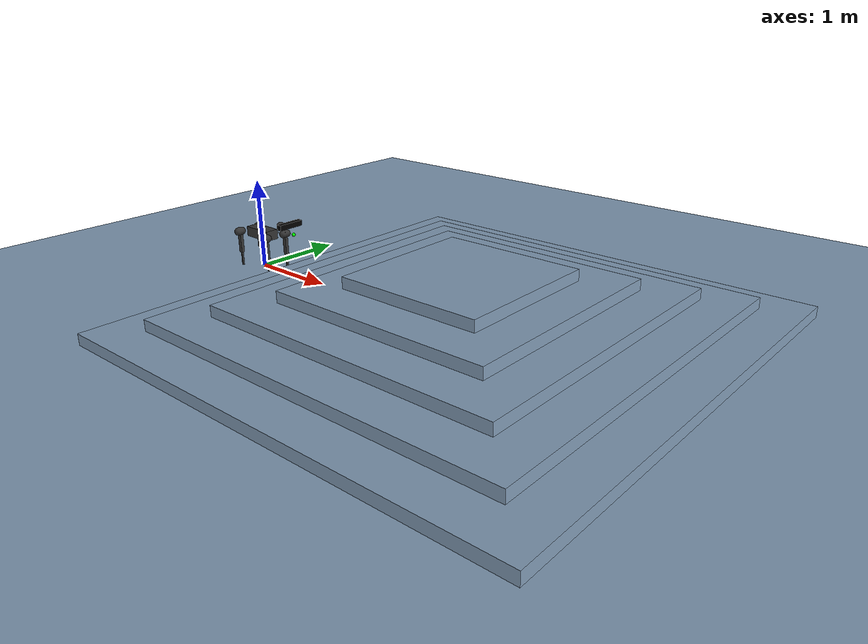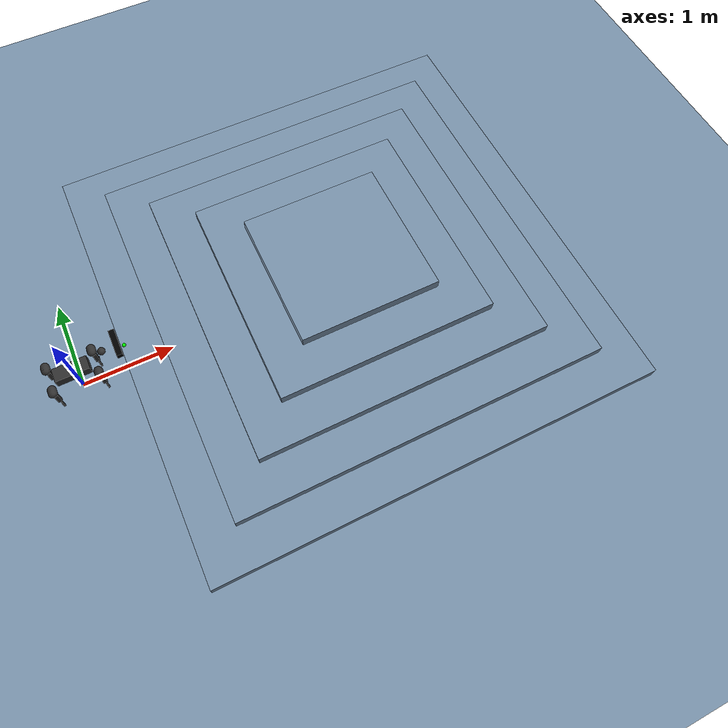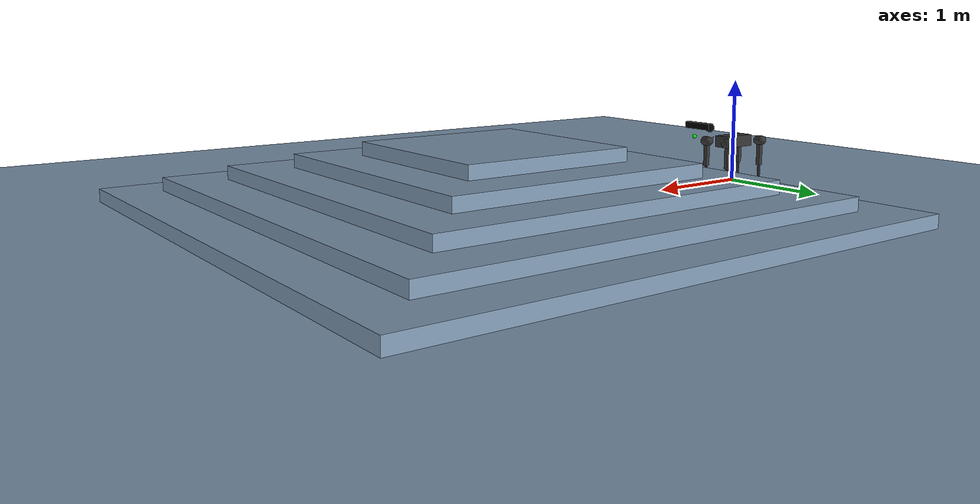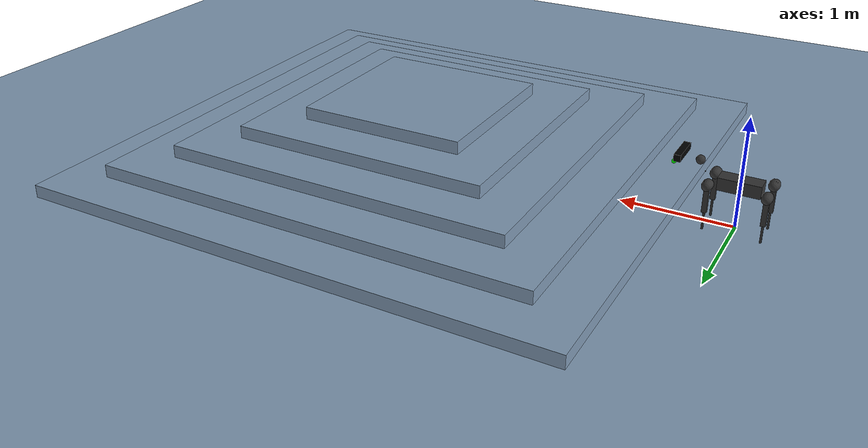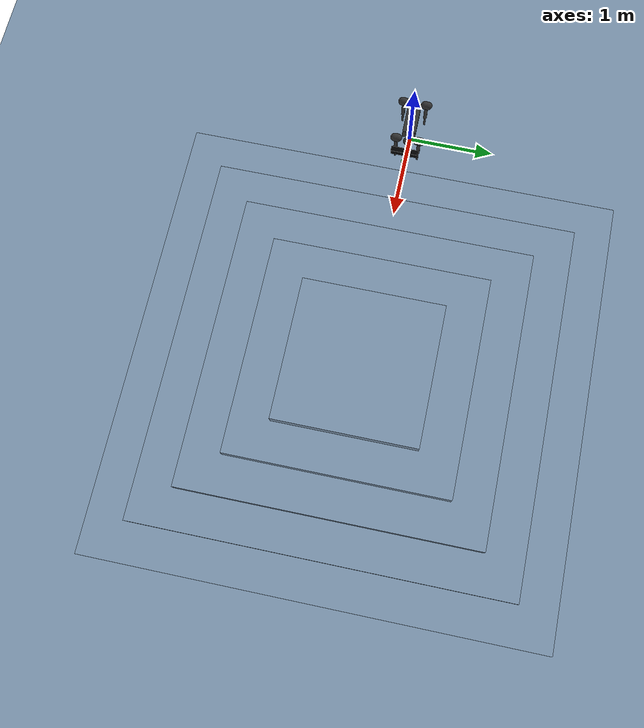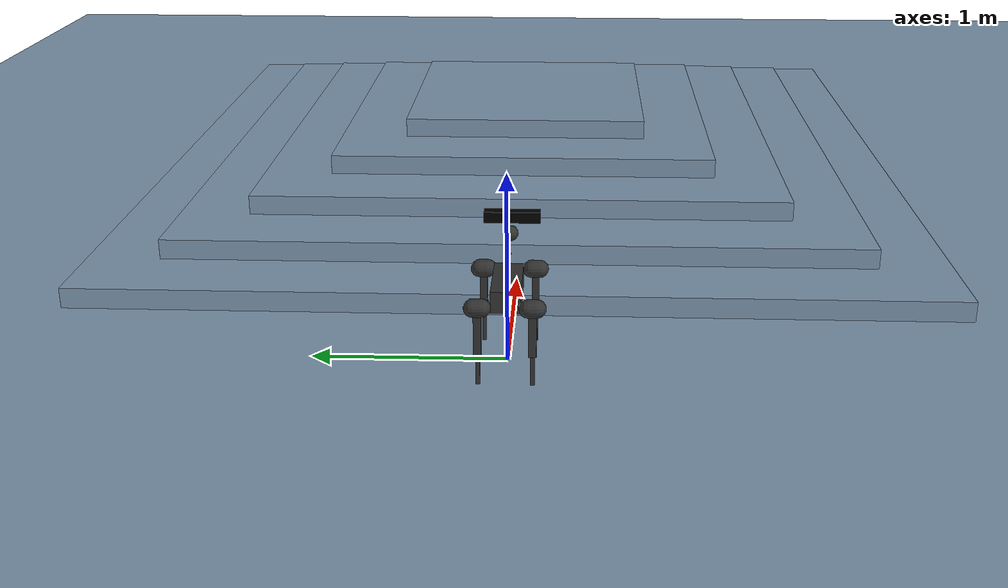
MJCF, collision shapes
<mujoco model="aliengo scene">
  <include file="aliengo_arm_follower.xml" />

  <statistic center="0 0 0.1" extent="0.8" />

  <visual>
    <headlight diffuse="0.6 0.6 0.6" ambient="0.3 0.3 0.3" specular="0 0 0" />
    <rgba haze="0.15 0.25 0.35 1" />
    <global azimuth="-130" elevation="-20" />
  </visual>

  <asset>
    <texture type="skybox" builtin="gradient" rgb1="0.3 0.5 0.7" rgb2="0 0 0" width="512" height="3072" />
    <texture type="2d" name="groundplane" builtin="checker" mark="edge" rgb1="0.2 0.3 0.4" rgb2="0.1 0.2 0.3" markrgb="0.8 0.8 0.8" width="300" height="300" />
    <material name="groundplane" texture="groundplane" texuniform="true" texrepeat="5 5" reflectance="0.2" />
  </asset>

  <worldbody>
    <light pos="0 0 1.5" dir="0 0 -1" directional="true" />
    <geom name="floor" size="0 0 0.05" type="plane" material="groundplane" />
  <geom pos="3.0 0.0 0.06841694527491272" type="box" size="2.5 2.5 0.059208472637456364" quat="1.0 0.0 0.0 0.0" /><geom pos="3.0 0.0 0.18683389054982547" type="box" size="2.071202658406895 2.071202658406895 0.059208472637456364" quat="1.0 0.0 0.0 0.0" /><geom pos="3.0 0.0 0.3052508358247382" type="box" size="1.6424053168137902 1.6424053168137902 0.059208472637456364" quat="1.0 0.0 0.0 0.0" /><geom pos="3.0 0.0 0.423667781099651" type="box" size="1.2136079752206852 1.2136079752206852 0.059208472637456364" quat="1.0 0.0 0.0 0.0" /><geom pos="3.0 0.0 0.5420847263745637" type="box" size="0.7848106336275804 0.7848106336275804 0.059208472637456364" quat="1.0 0.0 0.0 0.0" /></worldbody>
</mujoco>

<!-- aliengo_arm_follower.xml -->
<mujoco model="aliengo_description">
    <compiler angle="radian" meshdir="./assets/" autolimits="true"/>
    <option cone="elliptic" impratio="100" />
    <size njmax="500" nconmax="100" />
    <option gravity='0 0 -9.806' timestep='0.002'/>

    <default>
        <geom contype="1" conaffinity="1" friction="0.8 0.02 0.01" rgba="0.5 0.6 0.7 1" margin="0.001" group="0"/>

        <light castshadow="false" diffuse="1 1 1"/>
        <camera fovy="60"/>
        <joint damping="3" armature="0.01" frictionloss="0.2" />

        <default class="visual">
            <geom type="mesh" contype="0" conaffinity="0" group="2"/>
        </default>
        <default class="collision">
            <geom group="3" rgba="0.2 0.2 0.2 0.5"/>
        </default>

        <default class="hip">
            <motor ctrlrange="-44.4 44.4"/>
        </default>
        <default class="thigh">
            <motor ctrlrange="-35.278 35.278"/>
        </default>
        <default class="calf">
            <motor ctrlrange="-35.278 35.278"/>
        </default>

    </default>
    <!-- No rename the assests these are the mesh files-->
    <asset>
        <mesh name="trunk" file="trunk.stl" />
        <mesh name="hip" file="hip.stl" />
        <mesh name="thigh_mirror" file="thigh_mirror.stl" />
        <mesh name="calf" file="calf.stl" />
        <mesh name="thigh" file="thigh.stl" />
        <mesh name="base_arm_link" file="base_arm_link.stl" />
        <mesh name="arm_link_1" file="arm_link_1.stl" />
        <mesh name="arm_link_2" file="arm_link_2.stl" />
        <mesh name="arm_link_3" file="arm_link_3.stl" />

    </asset>

    <!-- pos is used to set the position-->
    <worldbody>
        <light directional="true" diffuse=".8 .8 .8" pos="0 0 10" dir="0 0 -10"/>
        <camera pos="1.794 0.068 0.397" mode="trackcom" xyaxes="0.008 1.000 0.000 -0.155 0.001 0.988"/>
        <camera name="track" mode="trackcom" pos="0 -1.3 1.6" xyaxes="1 0 0 0 0.707 0.707"/>

        <body name="trunk" pos="0 0 0.4">
            <inertial pos="0.00846406 0.00404455 -0.000762916" quat="-3.12625e-05 0.708321 0.00247254 0.705886" mass="13.042" diaginertia="0.174706 0.161175 0.033357" />
            <freejoint/>

            <!-- trunk visual mesh and collision -->
            <geom type="mesh" class="visual" rgba="0.2 0.2 0.2 1" mesh="trunk"/>
            <geom type="box" class="collision" size="0.18 0.075 0.056"/>

            <!-- modify this to add payload -->

            <!-- imu and camera -->
            <site name="imu" pos="0 0 0"/>
            <camera name="robotcam" pos="0.31 -0.005 0.00292751" quat= "0.4 0.4 -0.4 -0.4"/>

            <!-- FL leg -->
            <body name="FL_hip" pos="0.2399 0.051 0">
                <inertial pos="-0.022191 0.015144 -1.5e-05" quat="-0.0135493 0.706835 0.0117635 0.707151" mass="1.993" diaginertia="0.00558695 0.00491009 0.00290132" />
                <joint name="FL_hip_joint" pos="0 0 0" axis="1 0 0" limited="true" range="-1.22173 1.22173" />

                <!-- FL_hip visual mesh and collision -->
                <geom type="mesh" class="visual" rgba="0.2 0.2 0.2 1" mesh="hip"/>
                <geom type="capsule" class="collision" size="0.046 0.0209" pos="0 0.083 0" quat="0.707107 0.707107 0 0"/>

                <body name="FL_thigh" pos="0 0.083 0">
                    <inertial pos="-0.005607 -0.003877 -0.048199" quat="0.717987 -0.031246 -0.0335669 0.694544" mass="0.639" diaginertia="0.0058474 0.00571186 0.000324584" />
                    <joint name="FL_thigh_joint" pos="0 0 0" axis="0 1 0" />

                    <!-- FL_thigh visual mesh and collision -->
                    <geom type="mesh" class="visual" rgba="0.2 0.2 0.2 1" mesh="thigh"/>
                    <geom type="box" class="collision" size="0.125 0.0187 0.0215" pos="0 0 -0.125" quat="0.707107 0 0.707107 0"/>

                    <body name="FL_calf" pos="0 0 -0.25">
                        <inertial pos="0.00215606 4.88427e-05 -0.166671" quat="0.707462 0.00517582 0.00535172 0.706712" mass="0.267" diaginertia="0.00690975 0.00689712 5.4885e-05" />
                        <joint name="FL_calf_joint" pos="0 0 0" axis="0 1 0" limited="true" range="-2.77507 -0.645772" />

                        <!-- FL_calf visual mesh and collision -->
                        <geom type="mesh" class="visual" rgba="0 0 0 1" mesh="calf" />
                        <geom type="box" class="collision" size="0.125 0.0104 0.008" pos="0 0 -0.125" quat="0.707107 0 0.707107 0"/>

                        <!-- FL_foot only collision -->
                        <geom name="FL" class="collision" size="0.0265" pos="0 0 -0.25" />
                    </body>
                </body>
            </body>

            <!-- FR leg -->
            <body name="FR_hip" pos="0.2399 -0.051 0">
                <inertial pos="-0.022191 -0.015144 -1.5e-05" quat="0.0135493 0.706835 -0.0117635 0.707151" mass="1.993" diaginertia="0.00558695 0.00491009 0.00290132" />
                <joint name="FR_hip_joint" pos="0 0 0" axis="1 0 0" limited="true" range="-1.22173 1.22173" />

                <!-- FR_hip visual mesh and collision -->
                <geom type="mesh" mesh="hip" class="visual" quat="0 1 0 0" rgba="0.2 0.2 0.2 1"/>
                <geom type="capsule" class="collision" size="0.046 0.0209" pos="0 -0.083 0" quat="0.707107 0.707107 0 0"/>

                <body name="FR_thigh" pos="0 -0.083 0">
                    <inertial pos="-0.005607 0.003877 -0.048199" quat="0.694544 -0.0335669 -0.031246 0.717987" mass="0.639" diaginertia="0.0058474 0.00571186 0.000324584" />
                    <joint name="FR_thigh_joint" pos="0 0 0" axis="0 1 0" />

                    <!-- FR_thigh visual mesh and collision -->
                    <geom type="mesh" mesh="thigh_mirror" class="visual" rgba="0.2 0.2 0.2 1" />
                    <geom type="box" class="collision" size="0.125 0.0187 0.0215" pos="0 0 -0.125" quat="0.707107 0 0.707107 0"/>

                    <body name="FR_calf" pos="0 0 -0.25">
                        <inertial pos="0.00215606 4.88427e-05 -0.166671" quat="0.707462 0.00517582 0.00535172 0.706712" mass="0.267" diaginertia="0.00690975 0.00689712 5.4885e-05" />
                        <joint name="FR_calf_joint" pos="0 0 0" axis="0 1 0" limited="true" range="-2.77507 -0.645772" />

                        <!-- FR_calf visual mesh and collision -->
                        <geom type="mesh" mesh="calf" class="visual" rgba="0 0 0 1"/>
                        <geom type="box" class="collision" size="0.125 0.0104 0.008" pos="0 0 -0.125" quat="0.707107 0 0.707107 0"/>

                        <!-- FR_foot only collision -->
                        <geom name="FR" class="collision" size="0.0265" pos="0 0 -0.25"/>
                    </body>
                </body>
            </body>

            <!-- RL leg -->
            <body name="RL_hip" pos="-0.2399 0.051 0">
                <inertial pos="0.022191 0.015144 -1.5e-05" quat="0.0117635 0.707151 -0.0135493 0.706835" mass="1.993" diaginertia="0.00558695 0.00491009 0.00290132" />
                <joint name="RL_hip_joint" pos="0 0 0" axis="1 0 0" limited="true" range="-1.22173 1.22173" />

                <!-- RL_hip visual mesh and collision -->
                <geom type="mesh" class="visual" quat="0 0 1 0" rgba="0.2 0.2 0.2 1" mesh="hip"/>
                <geom type="capsule" class="collision" size="0.046 0.0209" pos="0 0.083 0" quat="0.707107 0.707107 0 0"/>

                <body name="RL_thigh" pos="0 0.083 0">
                    <inertial pos="-0.005607 -0.003877 -0.048199" quat="0.717987 -0.031246 -0.0335669 0.694544" mass="0.639" diaginertia="0.0058474 0.00571186 0.000324584" />
                    <joint name="RL_thigh_joint" pos="0 0 0" axis="0 1 0" />

                    <!-- RL_thigh visual mesh and collision -->
                    <geom type="mesh" class="visual" rgba="0.2 0.2 0.2 1" mesh="thigh"/>
                    <geom type="box" class="collision" size="0.125 0.0187 0.0215" pos="0 0 -0.125" quat="0.707107 0 0.707107 0"/>

                    <body name="RL_calf" pos="0 0 -0.25">
                        <inertial pos="0.00215606 4.88427e-05 -0.166671" quat="0.707462 0.00517582 0.00535172 0.706712" mass="0.267" diaginertia="0.00690975 0.00689712 5.4885e-05" />
                        <joint name="RL_calf_joint" pos="0 0 0" axis="0 1 0" limited="true" range="-2.77507 -0.645772" />

                        <!-- RL_calf visual mesh and collision -->
                        <geom type="mesh" class="visual" rgba="0 0 0 1" mesh="calf"/>
                        <geom type="box" class="collision" size="0.125 0.0104 0.008" pos="0 0 -0.125" quat="0.707107 0 0.707107 0"/>

                        <!-- RL_foot only collision -->
                        <geom name="RL" class="collision" size="0.0265" pos="0 0 -0.25"/>
                    </body>
                </body>
            </body>

            <!-- RR leg -->
            <body name="RR_hip" pos="-0.2399 -0.051 0">
                <inertial pos="0.022191 -0.015144 -1.5e-05" quat="-0.0117635 0.707151 0.0135493 0.706835" mass="1.993" diaginertia="0.00558695 0.00491009 0.00290132" />
                <joint name="RR_hip_joint" pos="0 0 0" axis="1 0 0" limited="true" range="-1.22173 1.22173" />

                <!-- RR_hip visual mesh and collision -->
                <geom type="mesh" class="visual" quat="0 0 0 -1" rgba="0.2 0.2 0.2 1" mesh="hip"/>
                <geom type="capsule" class="collision" size="0.046 0.0209" pos="0 -0.083 0" quat="0.707107 0.707107 0 0"/>

                <body name="RR_thigh" pos="0 -0.083 0">
                    <inertial pos="-0.005607 0.003877 -0.048199" quat="0.694544 -0.0335669 -0.031246 0.717987" mass="0.639" diaginertia="0.0058474 0.00571186 0.000324584" />
                    <joint name="RR_thigh_joint" pos="0 0 0" axis="0 1 0" />

                    <!-- RR_thigh visual mesh and collision -->
                    <geom type="mesh" class="visual" rgba="0.2 0.2 0.2 1" mesh="thigh_mirror"/>
                    <geom type="box" class="collision" size="0.125 0.0187 0.0215" pos="0 0 -0.125" quat="0.707107 0 0.707107 0"/>

                    <body name="RR_calf" pos="0 0 -0.25">
                        <inertial pos="0.00215606 4.88427e-05 -0.166671" quat="0.707462 0.00517582 0.00535172 0.706712" mass="0.267" diaginertia="0.00690975 0.00689712 5.4885e-05" />
                        <joint name="RR_calf_joint" pos="0 0 0" axis="0 1 0" limited="true" range="-2.77507 -0.645772" />

                        <!-- RR_calf visual mesh and collision -->
                        <geom type="mesh" class="visual" rgba="0 0 0 1" mesh="calf"/>
                        <geom type="box" class="collision" size="0.125 0.0104 0.008" pos="0 0 -0.125" quat="0.707107 0 0.707107 0"/>

                        <!-- RR_foot only collision -->
                        <geom name="RR" class="collision" size="0.0265" pos="0 0 -0.25" rgba="0 0 0 0"/>
                    </body>
                </body>
            </body>

            <!-- FOLLOWER CONFIGURATION -->
            <body name="arm_base" pos="0.3 0 0.056" >

                    <inertial pos="0. 0.0 0.0" quat="0 0 0 1" mass="0.02" diaginertia="0.000004622 0.000004495 0.000002079" />
                    <geom quat="-1 0 0 0" type="mesh" contype="0" conaffinity="0" group="2" rgba="0.2 0.2 0.2 1" mesh="base_arm_link" />
                    <geom size="0.0046 0.00209" pos="0 0 0" quat="0.707107 0.707107 0 0" type="capsule" rgba="0.2 0.2 0.2 0" />

                    <body name="arm_link_0" pos="0 0 0.06" quat="0 0 0 1">
                        <inertial pos="0. 0 0." quat="0 0 0 1" mass="0.05" diaginertia="0.000004622 0.000004495 0.000002079" />
                        <joint name="arm_link_1_joint" pos="0. 0 0." axis="0 0 1" limited="true" range="-3 3"  stiffness="10"
                        damping="0.1" />
                        <geom quat=" 0 0 0 1" type="mesh" contype="0" conaffinity="0" group="2" rgba="0.2 0.2 0.2 1" mesh="arm_link_1" />

                        <body name="follower/arm_link_1" pos="-0.05 0 0.035 " quat="1 0. 0 0">
                            <inertial pos="0.0194 0.0 -0.125" quat="0 0 0 1" mass="0.05" diaginertia="0.00000457 0.000004831 0.000001409" />
                            <joint name="arm_link_2_joint" pos="0.01 0 0.0" axis="0 1 0" limited="false" range="-1 1" stiffness="10"
                            damping="0.1" />
                            <geom quat=" 0 0 0 1" type="mesh" contype="0" conaffinity="0" group="2" rgba="0.2 0.2 0.2 1" mesh="arm_link_2" />
                            <geom size="0.04 0.0002 0.1" pos="0. 0 0" quat="0 0 0 1" type="capsule" rgba="0.2 0.2 0.2 0" />

                            <body name="arm_link_2" pos="-0.18 0.0 0.185" quat="1 0. 0 0">
                                <inertial pos="0.0388 0.0 -0.25" quat="1 0 0 0" mass="0.0220" diaginertia="0.000011088 0.00001072 0.000011255" />

                                <joint name="arm_link_3_joint" pos="0. 0 0" axis="0 1 0" limited="false" range="-1 0.2" stiffness="10"
                                damping="1" />
                                <geom quat=" 0 0 0 1 " name="apply_force_frame" type="mesh" contype="0" conaffinity="0" group="2" rgba="0.2 0.2 0.2 1" mesh="arm_link_3" />
                                <geom size="0.03 0.03 0.15" pos="0.02 0 -0.15" quat="0 0 1 1" type="box" rgba="0 0 0 0" />

                                <site name="eef_follower" pos="-0.04 0 -0.25" size="0.01" quat="-1 0 0 0"/>

                                <body name="eef" pos="-0.04  0 -0.25" quat="0 1 0.35 0" >
                                    <inertial pos="0 0 0" quat="0 0 0 1" mass="0.004" diaginertia="0.00001 0.00001 0.00001"/>
                                    <joint name="eef_joint"  damping="0.1"/>
                                    <geom name="eef_geom" type="sphere" size="0.02" rgba="0 1 0 1" contype="0" conaffinity="0"/>
                                    <site name="eef_contact" pos="0 0 0" size="0.01" rgba="1 0 0 1"/>
                                </body>
                            </body>
                        </body>
                    </body>
            </body>
        </body>

    </worldbody>

    <actuator>
        <motor name="FR_hip"   class="hip"    gear="1" joint="FR_hip_joint"/>
        <motor name="FR_thigh" class="thigh"  gear="1" joint="FR_thigh_joint"/>
        <motor name="FR_calf"  class="calf"   gear="1" joint="FR_calf_joint"/>
        <motor name="FL_hip"   class="hip"    gear="1" joint="FL_hip_joint"/>
        <motor name="FL_thigh" class="thigh"  gear="1" joint="FL_thigh_joint"/>
        <motor name="FL_calf"  class="calf"   gear="1" joint="FL_calf_joint"/>
        <motor name="RR_hip"   class="hip"    gear="1" joint="RR_hip_joint"/>
        <motor name="RR_thigh" class="thigh"  gear="1" joint="RR_thigh_joint"/>
        <motor name="RR_calf"  class="calf"   gear="1" joint="RR_calf_joint" />
        <motor name="RL_hip"   class="hip"    gear="1" joint="RL_hip_joint"/>
        <motor name="RL_thigh" class="thigh"  gear="1" joint="RL_thigh_joint"/>
        <motor name="RL_calf"  class="calf"   gear="1" joint="RL_calf_joint"/>

        <!-- second robot-->

    </actuator>

    <sensor>

        <jointpos name="arm_link_1_joint_pos" joint="arm_link_1_joint"/>
        <jointpos name="arm_link_2_joint_pos" joint="arm_link_2_joint"/>
        <jointpos name="arm_link_3_joint_pos" joint="arm_link_3_joint"/>

    </sensor>

    <!--this defines the initial position of the robot-->
    <keyframe>
        <key name="home" qpos="0 0 0.35 1 0 0 0 0 0.9 -1.8 0 0.9 -1.8 0 0.9 -1.8 0 0.9
        -1.8 0 0 0. 0.8

                             "
        ctrl="0 0.9 -1.8 0 0.9 -1.8 0 0.9 -1.8 0 0.9 -1.8
              "/>
    </keyframe>
</mujoco>
